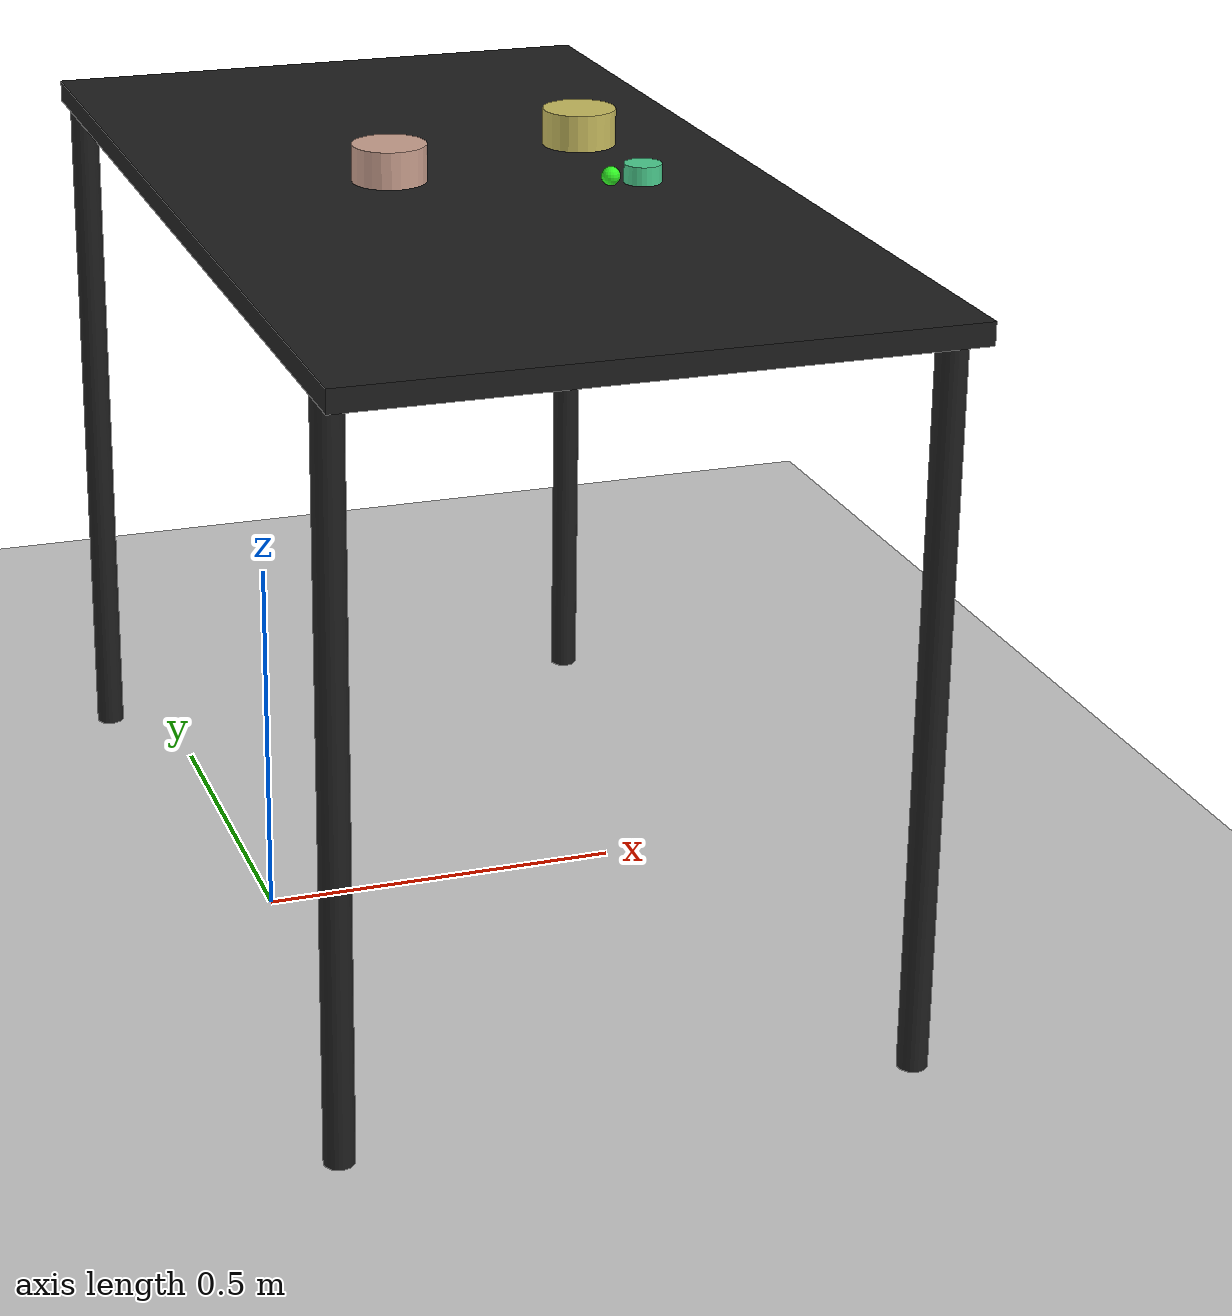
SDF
<?xml version="1.0" ?>
<sdf version="1.6">
  <world name="arm_world">
    <plugin filename="gz-sim-physics-system" name="gz::sim::systems::Physics">
      <engine>
        <filename>libgz-physics-bullet-featherstone-plugin.so</filename>
      </engine>
    </plugin>
    <plugin filename="gz-sim-user-commands-system" name="gz::sim::systems::UserCommands"/>
    <plugin filename="gz-sim-scene-broadcaster-system" name="gz::sim::systems::SceneBroadcaster"/>
    <plugin filename="gz-sim-sensors-system" name="gz::sim::systems::Sensors">
      <render_engine>ogre2</render_engine>
    </plugin>
    <gravity>0.0 0.0 -9.8</gravity>
    <scene>
      <shadows>false</shadows>
    </scene>
    <gui>
      <camera name="user_camera">
        <pose>0.75 -0.75 1.4 0 0.29 2.21</pose>
      </camera>
    </gui>
    <include>
      <uri>https://fuel.gazebosim.org/1.0/OpenRobotics/models/Sun</uri>
    </include>
    <model name="table">
      <static>true</static>
      <include>
        <uri>model://table</uri>
      </include>
      <pose>0.29 0 0 0 0 1.5708</pose>
    </model>
    <model name="ground_plane">
      <static>true</static>
      <link name="link">
        <collision name="collision">
          <geometry>
            <plane>
              <normal>0 0 1</normal>
            </plane>
          </geometry>
          <surface>
            <friction>
              <ode>
                <mu>1.0</mu>
                <mu2>1.0</mu2>
              </ode>
            </friction>
          </surface>
        </collision>
        <visual name="visual">
          <geometry>
            <plane>
              <normal>0 0 1</normal>
              <size>100 100</size>
            </plane>
          </geometry>
          <material>
            <ambient>0.8 0.8 0.8 1</ambient>
            <diffuse>0.8 0.8 0.8 1</diffuse>
            <specular>0.8 0.8 0.8 1</specular>
          </material>
        </visual>
      </link>
    </model>
    <model name="sphere_m_0">
      <pose>0.5 0.116 1.05 0 0 5.44</pose>
      <link name="sphere_m_0_link">
        <inertial>
          <mass>0.05</mass>
          <inertia>
            <ixx>2.04e-7</ixx>
            <iyy>2.04e-7</iyy>
            <izz>3.9e-8</izz>
            <ixy>0</ixy>
            <ixz>0</ixz>
            <iyz>0</iyz>
          </inertia>
        </inertial>
        <collision name="sphere_m_0_collision">
          <geometry>
            <sphere>
              <radius>0.025</radius>
            </sphere>
          </geometry>
          <surface>
            <friction>
              <ode>
                <mu>0.8</mu>
                <mu2>0.8</mu2>
                <fdir1>0 0 1</fdir1>
                <slip1>0.001</slip1>
                <slip2>0.001</slip2>
              </ode>
              <torsional>
                <coefficient>0.1</coefficient>
                <surface_radius>0.015</surface_radius>
                <use_patch_radius>true</use_patch_radius>
              </torsional>
            </friction>
            <contact>
              <ode>
                <kp>1e5</kp>
                <kd>10</kd>
                <max_vel>0.1</max_vel>
                <min_depth>0.001</min_depth>
                <soft_cfm>0.01</soft_cfm>
                <soft_erp>0.2</soft_erp>
              </ode>
            </contact>
            <bounce>
              <restitution_coefficient>0.2</restitution_coefficient>
              <threshold>0.01</threshold>
            </bounce>
          </surface>
        </collision>
        <visual name="sphere_m_0_visual">
          <geometry>
            <sphere>
              <radius>0.025</radius>
            </sphere>
          </geometry>
          <material>
            <ambient>0.97 0.93 0.2 1</ambient>
            <diffuse>0.97 0.93 0.2 1</diffuse>
          </material>
        </visual>
        <velocity_decay>
          <linear>1</linear>
          <angular>1</angular>
        </velocity_decay>
      </link>
    </model>
    <model name="cylinder_m_1">
      <pose>0.487 -0.129 1.05 0 0 3.01</pose>
      <link name="cylinder_m_1_link">
        <inertial>
          <mass>0.05</mass>
          <inertia>
            <ixx>2.04e-7</ixx>
            <iyy>2.04e-7</iyy>
            <izz>3.9e-8</izz>
            <ixy>0</ixy>
            <ixz>0</ixz>
            <iyz>0</iyz>
          </inertia>
        </inertial>
        <collision name="cylinder_m_1_collision">
          <geometry>
            <cylinder>
              <radius>0.025</radius>
              <length>0.025</length>
            </cylinder>
          </geometry>
          <surface>
            <friction>
              <ode>
                <mu>0.8</mu>
                <mu2>0.8</mu2>
                <fdir1>0 0 1</fdir1>
                <slip1>0.001</slip1>
                <slip2>0.001</slip2>
              </ode>
              <torsional>
                <coefficient>0.1</coefficient>
                <surface_radius>0.015</surface_radius>
                <use_patch_radius>true</use_patch_radius>
              </torsional>
            </friction>
            <contact>
              <ode>
                <kp>1e5</kp>
                <kd>10</kd>
                <max_vel>0.1</max_vel>
                <min_depth>0.001</min_depth>
                <soft_cfm>0.01</soft_cfm>
                <soft_erp>0.2</soft_erp>
              </ode>
            </contact>
            <bounce>
              <restitution_coefficient>0.2</restitution_coefficient>
              <threshold>0.01</threshold>
            </bounce>
          </surface>
        </collision>
        <visual name="cylinder_m_1_visual">
          <geometry>
            <cylinder>
              <radius>0.025</radius>
              <length>0.025</length>
            </cylinder>
          </geometry>
          <material>
            <ambient>0.3 0.82 0.57 1</ambient>
            <diffuse>0.3 0.82 0.57 1</diffuse>
          </material>
        </visual>
        <velocity_decay>
          <linear>1</linear>
          <angular>1</angular>
        </velocity_decay>
      </link>
    </model>
    <model name="sphere_s_2">
      <pose>0.441 -0.134 1.05 0 0 0.62</pose>
      <link name="sphere_s_2_link">
        <inertial>
          <mass>0.05</mass>
          <inertia>
            <ixx>2.04e-7</ixx>
            <iyy>2.04e-7</iyy>
            <izz>3.9e-8</izz>
            <ixy>0</ixy>
            <ixz>0</ixz>
            <iyz>0</iyz>
          </inertia>
        </inertial>
        <collision name="sphere_s_2_collision">
          <geometry>
            <sphere>
              <radius>0.0125</radius>
            </sphere>
          </geometry>
          <surface>
            <friction>
              <ode>
                <mu>0.8</mu>
                <mu2>0.8</mu2>
                <fdir1>0 0 1</fdir1>
                <slip1>0.001</slip1>
                <slip2>0.001</slip2>
              </ode>
              <torsional>
                <coefficient>0.1</coefficient>
                <surface_radius>0.015</surface_radius>
                <use_patch_radius>true</use_patch_radius>
              </torsional>
            </friction>
            <contact>
              <ode>
                <kp>1e5</kp>
                <kd>10</kd>
                <max_vel>0.1</max_vel>
                <min_depth>0.001</min_depth>
                <soft_cfm>0.01</soft_cfm>
                <soft_erp>0.2</soft_erp>
              </ode>
            </contact>
            <bounce>
              <restitution_coefficient>0.2</restitution_coefficient>
              <threshold>0.01</threshold>
            </bounce>
          </surface>
        </collision>
        <visual name="sphere_s_2_visual">
          <geometry>
            <sphere>
              <radius>0.0125</radius>
            </sphere>
          </geometry>
          <material>
            <ambient>0.19 0.96 0.14 1</ambient>
            <diffuse>0.19 0.96 0.14 1</diffuse>
          </material>
        </visual>
        <velocity_decay>
          <linear>1</linear>
          <angular>1</angular>
        </velocity_decay>
      </link>
    </model>
    <model name="cylinder_l_3">
      <pose>0.49 0.129 1.05 0 0 0.43</pose>
      <link name="cylinder_l_3_link">
        <inertial>
          <mass>0.05</mass>
          <inertia>
            <ixx>2.04e-7</ixx>
            <iyy>2.04e-7</iyy>
            <izz>3.9e-8</izz>
            <ixy>0</ixy>
            <ixz>0</ixz>
            <iyz>0</iyz>
          </inertia>
        </inertial>
        <collision name="cylinder_l_3_collision">
          <geometry>
            <cylinder>
              <radius>0.05</radius>
              <length>0.05</length>
            </cylinder>
          </geometry>
          <surface>
            <friction>
              <ode>
                <mu>0.8</mu>
                <mu2>0.8</mu2>
                <fdir1>0 0 1</fdir1>
                <slip1>0.001</slip1>
                <slip2>0.001</slip2>
              </ode>
              <torsional>
                <coefficient>0.1</coefficient>
                <surface_radius>0.015</surface_radius>
                <use_patch_radius>true</use_patch_radius>
              </torsional>
            </friction>
            <contact>
              <ode>
                <kp>1e5</kp>
                <kd>10</kd>
                <max_vel>0.1</max_vel>
                <min_depth>0.001</min_depth>
                <soft_cfm>0.01</soft_cfm>
                <soft_erp>0.2</soft_erp>
              </ode>
            </contact>
            <bounce>
              <restitution_coefficient>0.2</restitution_coefficient>
              <threshold>0.01</threshold>
            </bounce>
          </surface>
        </collision>
        <visual name="cylinder_l_3_visual">
          <geometry>
            <cylinder>
              <radius>0.05</radius>
              <length>0.05</length>
            </cylinder>
          </geometry>
          <material>
            <ambient>0.8 0.75 0.38 1</ambient>
            <diffuse>0.8 0.75 0.38 1</diffuse>
          </material>
        </visual>
        <velocity_decay>
          <linear>1</linear>
          <angular>1</angular>
        </velocity_decay>
      </link>
    </model>
    <model name="cylinder_l_4">
      <pose>0.188 0.021 1.05 0 0 6.06</pose>
      <link name="cylinder_l_4_link">
        <inertial>
          <mass>0.05</mass>
          <inertia>
            <ixx>2.04e-7</ixx>
            <iyy>2.04e-7</iyy>
            <izz>3.9e-8</izz>
            <ixy>0</ixy>
            <ixz>0</ixz>
            <iyz>0</iyz>
          </inertia>
        </inertial>
        <collision name="cylinder_l_4_collision">
          <geometry>
            <cylinder>
              <radius>0.05</radius>
              <length>0.05</length>
            </cylinder>
          </geometry>
          <surface>
            <friction>
              <ode>
                <mu>0.8</mu>
                <mu2>0.8</mu2>
                <fdir1>0 0 1</fdir1>
                <slip1>0.001</slip1>
                <slip2>0.001</slip2>
              </ode>
              <torsional>
                <coefficient>0.1</coefficient>
                <surface_radius>0.015</surface_radius>
                <use_patch_radius>true</use_patch_radius>
              </torsional>
            </friction>
            <contact>
              <ode>
                <kp>1e5</kp>
                <kd>10</kd>
                <max_vel>0.1</max_vel>
                <min_depth>0.001</min_depth>
                <soft_cfm>0.01</soft_cfm>
                <soft_erp>0.2</soft_erp>
              </ode>
            </contact>
            <bounce>
              <restitution_coefficient>0.2</restitution_coefficient>
              <threshold>0.01</threshold>
            </bounce>
          </surface>
        </collision>
        <visual name="cylinder_l_4_visual">
          <geometry>
            <cylinder>
              <radius>0.05</radius>
              <length>0.05</length>
            </cylinder>
          </geometry>
          <material>
            <ambient>0.81 0.64 0.57 1</ambient>
            <diffuse>0.81 0.64 0.57 1</diffuse>
          </material>
        </visual>
        <velocity_decay>
          <linear>1</linear>
          <angular>1</angular>
        </velocity_decay>
      </link>
    </model>
  </world>
</sdf>

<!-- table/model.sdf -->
<sdf version="1.5">
  <model name="table">
    <static>true</static>
    <link name="link">
      <collision name="surface">
        <pose>0 0 1.0 0 0 0</pose>
        <geometry>
          <box>
            <size>1.5 0.8 0.03</size>
          </box>
        </geometry>
        <surface>
          <friction>
            <ode>
              <mu>0.6</mu>
              <mu2>0.6</mu2>
            </ode>
          </friction>
        </surface>
      </collision>
      <visual name="surface">
        <pose>0 0 1.0 0 0 0</pose>
        <geometry>
          <box>
            <size>1.5 0.8 0.03</size>
          </box>
        </geometry>
        <material>
          <script>
            <uri>file://media/materials/scripts/gazebo.material</uri>
            <name>Gazebo/Black</name>
          </script>
        </material>
      </visual>
      <collision name="front_left_leg">
        <pose>0.68 0.38 0.5 0 0 0</pose>
        <geometry>
          <cylinder>
            <radius>0.02</radius>
            <length>1.0</length>
          </cylinder>
        </geometry>
      </collision>
      <visual name="front_left_leg">
        <pose>0.68 0.38 0.5 0 0 0</pose>
        <geometry>
          <cylinder>
            <radius>0.02</radius>
            <length>1.0</length>
          </cylinder>
        </geometry>
        <material>
          <script>
            <uri>file://media/materials/scripts/gazebo.material</uri>
            <name>Gazebo/Black</name>
          </script>
        </material>
      </visual>
      <collision name="front_right_leg">
        <pose>0.68 -0.38 0.5 0 0 0</pose>
        <geometry>
          <cylinder>
            <radius>0.02</radius>
            <length>1.0</length>
          </cylinder>
        </geometry>
      </collision>
      <visual name="front_right_leg">
        <pose>0.68 -0.38 0.5 0 0 0</pose>
        <geometry>
          <cylinder>
            <radius>0.02</radius>
            <length>1.0</length>
          </cylinder>
        </geometry>
        <material>
          <script>
            <uri>file://media/materials/scripts/gazebo.material</uri>
            <name>Gazebo/Black</name>
          </script>
        </material>
      </visual>
      <collision name="back_right_leg">
        <pose>-0.68 -0.38 0.5 0 0 0</pose>
        <geometry>
          <cylinder>
            <radius>0.02</radius>
            <length>1.0</length>
          </cylinder>
        </geometry>
      </collision>
      <visual name="back_right_leg">
        <pose>-0.68 -0.38 0.5 0 0 0</pose>
        <geometry>
          <cylinder>
            <radius>0.02</radius>
            <length>1.0</length>
          </cylinder>
        </geometry>
        <material>
          <script>
            <uri>file://media/materials/scripts/gazebo.material</uri>
            <name>Gazebo/Black</name>
          </script>
        </material>
      </visual>
      <collision name="back_left_leg">
        <pose>-0.68 0.38 0.5 0 0 0</pose>
        <geometry>
          <cylinder>
            <radius>0.02</radius>
            <length>1.0</length>
          </cylinder>
        </geometry>
      </collision>
      <visual name="back_left_leg">
        <pose>-0.68 0.38 0.5 0 0 0</pose>
        <geometry>
          <cylinder>
            <radius>0.02</radius>
            <length>1.0</length>
          </cylinder>
        </geometry>
        <material>
          <script>
            <uri>file://media/materials/scripts/gazebo.material</uri>
            <name>Gazebo/Black</name>
          </script>
        </material>
      </visual>
    </link>
  </model>
</sdf>
